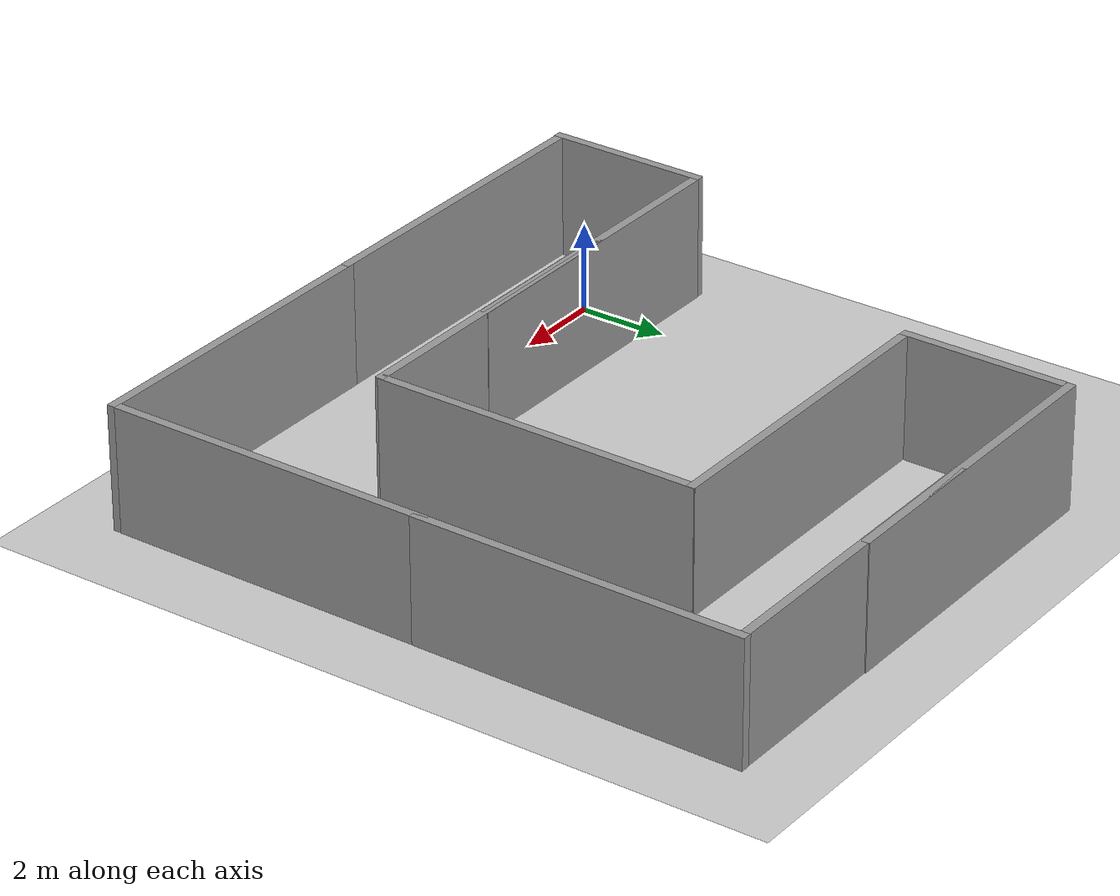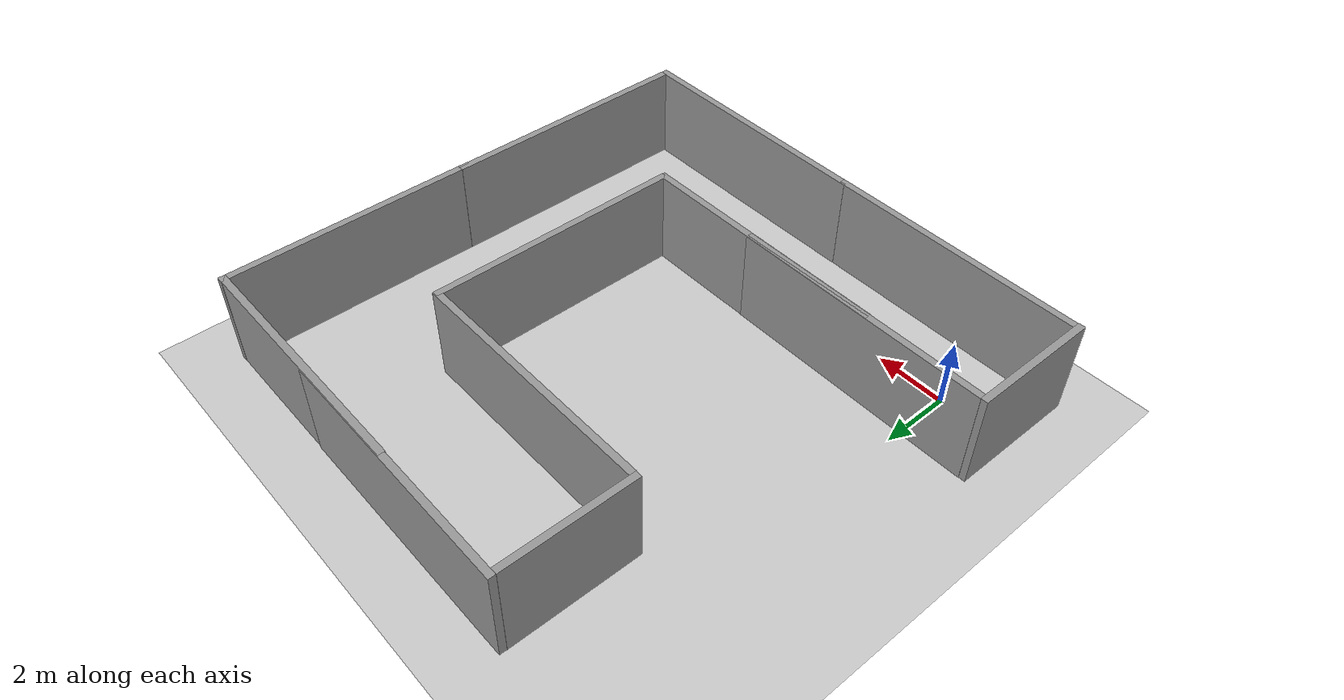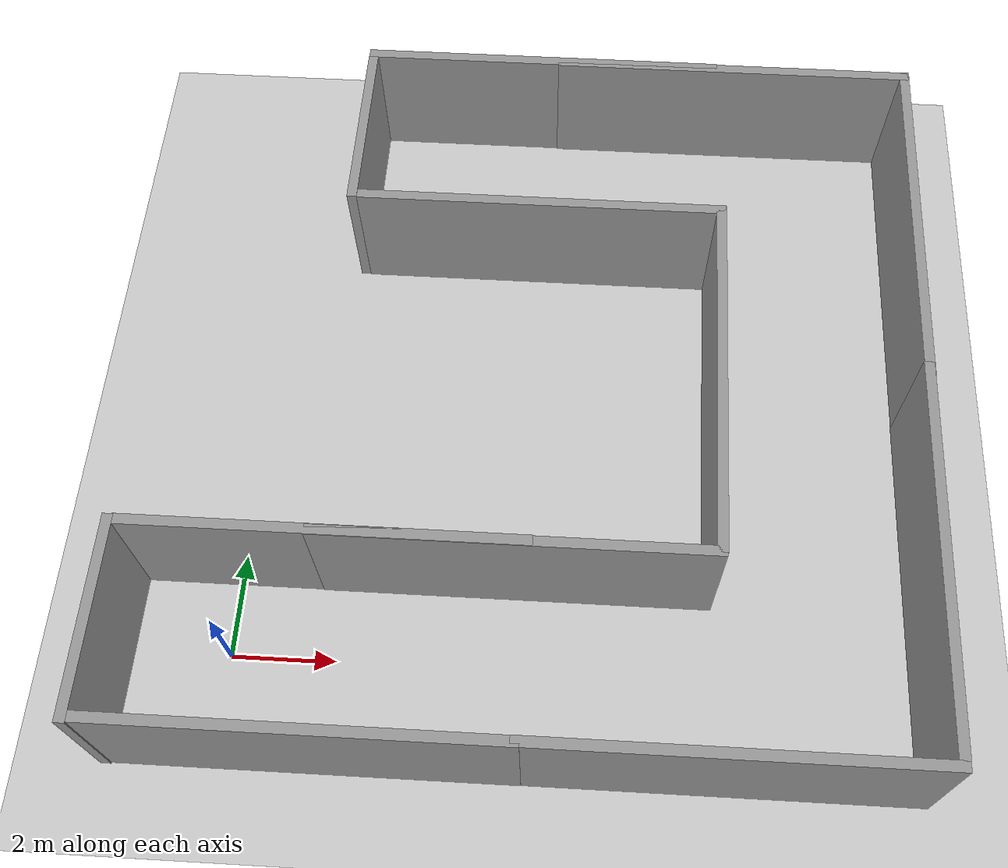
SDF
<sdf version="1.6">
 <world name="default">
  <light name="sun" type="directional">
   <pose>0 0 10 0 -0 0</pose>
   <diffuse>0.8 0.8 0.8 1</diffuse>
   <specular>0.1 0.1 0.1 1</specular>
   <attenuation>
    <range>1000</range>
    <constant>0.9</constant>
    <linear>0.01</linear>
    <quadratic>0.001</quadratic>
   </attenuation>
   <direction>-0.5 0.5 -1</direction>
  </light>
  <model name="ground_plane">
   <static>1</static>
   <link name="link">
    <collision name="collision">
     <geometry><plane><normal>0 0 1</normal><size>100 100</size></plane></geometry>
     <surface><friction><ode><mu>100</mu><mu2>50</mu2></ode></friction></surface>
    </collision>
    <visual name="visual">
     <cast_shadows>0</cast_shadows>
     <geometry><plane><normal>0 0 1</normal><size>100 100</size></plane></geometry>
     <material>
      <script><uri>file://media/materials/scripts/gazebo.material</uri><name>Gazebo/Grey</name></script>
     </material>
    </visual>
   </link>
  </model>
  <gravity>0 0 -9.8</gravity>
  <magnetic_field>6e-06 2.3e-05 -4.2e-05</magnetic_field>
  <atmosphere type="adiabatic"/>
  <physics name="default_physics" default="0" type="ode">
   <max_step_size>0.001</max_step_size>
   <real_time_factor>1</real_time_factor>
   <real_time_update_rate>1000</real_time_update_rate>
  </physics>
  <scene><ambient>0.4 0.4 0.4 1</ambient><background>0.7 0.7 0.7 1</background><shadows>1</shadows></scene>
  <spherical_coordinates>
   <surface_model>EARTH_WGS84</surface_model>
   <latitude_deg>0</latitude_deg>
   <longitude_deg>0</longitude_deg>
   <elevation>0</elevation>
   <heading_deg>0</heading_deg>
  </spherical_coordinates>
  <model name="grey_wall">
   <static>1</static>
   <link name="link">
    <pose>0 0 1.4 0 -0 0</pose>
    <collision name="collision"><geometry><box><size>7.5 0.2 2.8</size></box></geometry></collision>
    <visual name="visual">
     <cast_shadows>0</cast_shadows>
     <geometry><box><size>7.5 0.2 2.8</size></box></geometry>
     <material>
      <script>
       <uri>model://grey_wall/materials/scripts</uri>
       <uri>model://grey_wall/materials/textures</uri>
       <name>vrc/grey_wall</name>
      </script>
     </material>
    </visual>
   </link>
   <pose>1.89185 1.53805 0 0 -0 0</pose>
  </model>
  <model name="grey_wall_0">
   <static>1</static>
   <link name="link">
    <pose>0 0 1.4 0 -0 0</pose>
    <collision name="collision"><geometry><box><size>7.5 0.2 2.8</size></box></geometry></collision>
    <visual name="visual">
     <cast_shadows>0</cast_shadows>
     <geometry><box><size>7.5 0.2 2.8</size></box></geometry>
     <material>
      <script>
       <uri>model://grey_wall/materials/scripts</uri>
       <uri>model://grey_wall/materials/textures</uri>
       <name>vrc/grey_wall</name>
      </script>
     </material>
    </visual>
   </link>
   <pose>5.32561 1.52638 0 0 -0 0</pose>
  </model>
  <model name="grey_wall_1">
   <static>1</static>
   <link name="link">
    <pose>0 0 1.4 0 -0 0</pose>
    <collision name="collision"><geometry><box><size>7.5 0.2 2.8</size></box></geometry></collision>
    <visual name="visual">
     <cast_shadows>0</cast_shadows>
     <geometry><box><size>7.5 0.2 2.8</size></box></geometry>
     <material>
      <script>
       <uri>model://grey_wall/materials/scripts</uri>
       <uri>model://grey_wall/materials/textures</uri>
       <name>vrc/grey_wall</name>
      </script>
     </material>
    </visual>
   </link>
   <pose>1.8782 -2.00381 0 0 -0 0</pose>
  </model>
  <model name="grey_wall_2">
   <static>1</static>
   <link name="link">
    <pose>0 0 1.4 0 -0 0</pose>
    <collision name="collision"><geometry><box><size>7.5 0.2 2.8</size></box></geometry></collision>
    <visual name="visual">
     <cast_shadows>0</cast_shadows>
     <geometry><box><size>7.5 0.2 2.8</size></box></geometry>
     <material>
      <script>
       <uri>model://grey_wall/materials/scripts</uri>
       <uri>model://grey_wall/materials/textures</uri>
       <name>vrc/grey_wall</name>
      </script>
     </material>
    </visual>
   </link>
   <pose>9.21826 -1.99851 0 0 -0 0</pose>
  </model>
  <model name="grey_wall_3">
   <static>1</static>
   <link name="link">
    <pose>0 0 1.4 0 -0 0</pose>
    <collision name="collision"><geometry><box><size>7.5 0.2 2.8</size></box></geometry></collision>
    <visual name="visual">
     <cast_shadows>0</cast_shadows>
     <geometry><box><size>7.5 0.2 2.8</size></box></geometry>
     <material>
      <script>
       <uri>model://grey_wall/materials/scripts</uri>
       <uri>model://grey_wall/materials/textures</uri>
       <name>vrc/grey_wall</name>
      </script>
     </material>
    </visual>
   </link>
   <pose>12.9009 1.83399 0 0 -0 1.56438</pose>
  </model>
  <model name="grey_wall_4">
   <static>1</static>
   <link name="link">
    <pose>0 0 1.4 0 -0 0</pose>
    <collision name="collision"><geometry><box><size>7.5 0.2 2.8</size></box></geometry></collision>
    <visual name="visual">
     <cast_shadows>0</cast_shadows>
     <geometry><box><size>7.5 0.2 2.8</size></box></geometry>
     <material>
      <script>
       <uri>model://grey_wall/materials/scripts</uri>
       <uri>model://grey_wall/materials/textures</uri>
       <name>vrc/grey_wall</name>
      </script>
     </material>
    </visual>
   </link>
   <pose>9.01683 5.24601 0 0 -0 1.56438</pose>
  </model>
  <model name="grey_wall_5">
   <static>1</static>
   <link name="link">
    <pose>0 0 1.4 0 -0 0</pose>
    <collision name="collision"><geometry><box><size>7.5 0.2 2.8</size></box></geometry></collision>
    <visual name="visual">
     <cast_shadows>0</cast_shadows>
     <geometry><box><size>7.5 0.2 2.8</size></box></geometry>
     <material>
      <script>
       <uri>model://grey_wall/materials/scripts</uri>
       <uri>model://grey_wall/materials/textures</uri>
       <name>vrc/grey_wall</name>
      </script>
     </material>
    </visual>
   </link>
   <pose>12.9551 9.01553 0 0 -0 1.56438</pose>
  </model>
  <model name="grey_wall_6">
   <static>1</static>
   <link name="link">
    <pose>0 0 1.4 0 -0 0</pose>
    <collision name="collision"><geometry><box><size>7.5 0.2 2.8</size></box></geometry></collision>
    <visual name="visual">
     <cast_shadows>0</cast_shadows>
     <geometry><box><size>7.5 0.2 2.8</size></box></geometry>
     <material>
      <script>
       <uri>model://grey_wall/materials/scripts</uri>
       <uri>model://grey_wall/materials/textures</uri>
       <name>vrc/grey_wall</name>
      </script>
     </material>
    </visual>
   </link>
   <pose>5.37991 8.91405 0 0 -0 0</pose>
  </model>
  <model name="grey_wall_7">
   <static>1</static>
   <link name="link">
    <pose>0 0 1.4 0 -0 0</pose>
    <collision name="collision"><geometry><box><size>7.5 0.2 2.8</size></box></geometry></collision>
    <visual name="visual">
     <cast_shadows>0</cast_shadows>
     <geometry><box><size>7.5 0.2 2.8</size></box></geometry>
     <material>
      <script>
       <uri>model://grey_wall/materials/scripts</uri>
       <uri>model://grey_wall/materials/textures</uri>
       <name>vrc/grey_wall</name>
      </script>
     </material>
    </visual>
   </link>
   <pose>9.31128 12.6569 0 0 -0 0</pose>
  </model>
  <model name="grey_wall_8">
   <static>1</static>
   <link name="link">
    <pose>0 0 1.4 0 -0 0</pose>
    <collision name="collision"><geometry><box><size>7.5 0.2 2.8</size></box></geometry></collision>
    <visual name="visual">
     <cast_shadows>0</cast_shadows>
     <geometry><box><size>7.5 0.2 2.8</size></box></geometry>
     <material>
      <script>
       <uri>model://grey_wall/materials/scripts</uri>
       <uri>model://grey_wall/materials/textures</uri>
       <name>vrc/grey_wall</name>
      </script>
     </material>
    </visual>
   </link>
   <pose>5.21494 12.678 0 0 -0 0</pose>
  </model>
  <model name="grey_wall_4_clone_clone">
   <static>1</static>
   <link name="link">
    <pose>0 0 1.4 0 -0 0</pose>
    <collision name="collision"><geometry><box><size>3.75 0.2 2.8</size></box></geometry></collision>
    <visual name="visual">
     <cast_shadows>0</cast_shadows>
     <geometry><box><size>3.75 0.2 2.8</size></box></geometry>
     <material>
      <script>
       <uri>model://grey_wall/materials/scripts</uri>
       <uri>model://grey_wall/materials/textures</uri>
       <name>vrc/grey_wall</name>
      </script>
     </material>
    </visual>
   </link>
   <pose>1.54482 10.7028 0.00371 0 -0 1.56438</pose>
  </model>
  <model name="grey_wall_4_clone_clone_clone">
   <static>1</static>
   <link name="link">
    <pose>0 0 1.4 0 -0 0</pose>
    <collision name="collision"><geometry><box><size>3.75 0.2 2.8</size></box></geometry></collision>
    <visual name="visual">
     <cast_shadows>0</cast_shadows>
     <geometry><box><size>3.75 0.2 2.8</size></box></geometry>
     <material>
      <script>
       <uri>model://grey_wall/materials/scripts</uri>
       <uri>model://grey_wall/materials/textures</uri>
       <name>vrc/grey_wall</name>
      </script>
     </material>
    </visual>
   </link>
   <pose>-1.95095 -0.248347 7.7e-05 0 -0 1.56438</pose>
  </model>
 </world>
</sdf>
